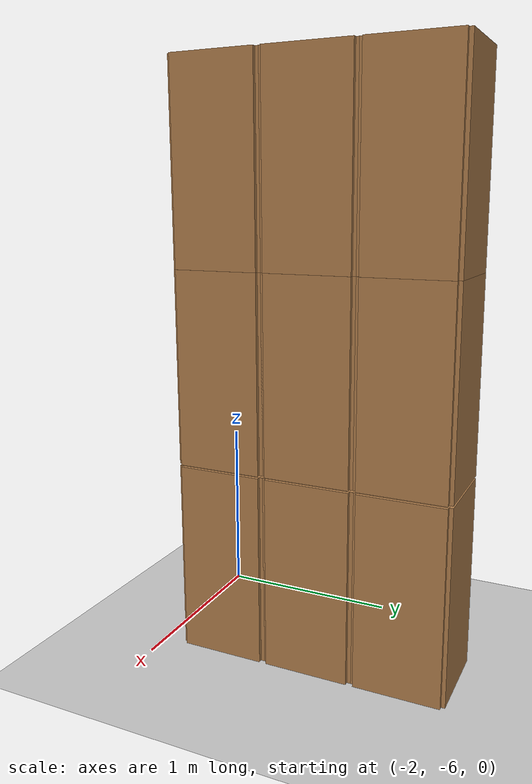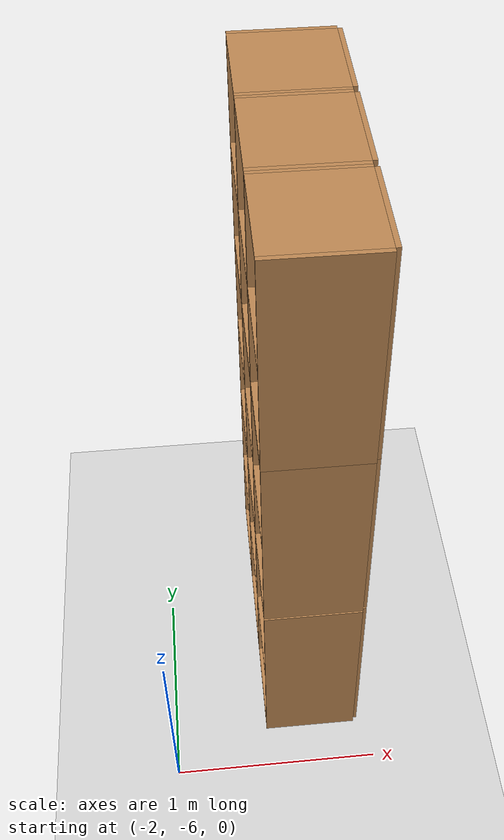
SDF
<sdf version="1.6">
 <world name="default">
  <model name="ground_plane">
   <static>1</static>
   <link name="link">
    <collision name="collision">
     <geometry><plane><normal>0 0 1</normal><size>100 100</size></plane></geometry>
     <surface>
      <contact><collide_bitmask>65535</collide_bitmask></contact>
      <friction><ode><mu>100</mu><mu2>50</mu2></ode></friction>
     </surface>
    </collision>
    <visual name="visual">
     <cast_shadows>0</cast_shadows>
     <geometry><plane><normal>0 0 1</normal><size>100 100</size></plane></geometry>
     <material>
      <script><uri>file://media/materials/scripts/gazebo.material</uri><name>Gazebo/Grey</name></script>
     </material>
    </visual>
   </link>
  </model>
  <model name="Locker18_clone_4_clone_2_clone_2_clone_2_clone_clone_0">
   <model name="Locker18">
    <model name="Locker3">
     <model name="cabinet">
      <static>1</static>
      <link name="cabinet_bottom_plate">
       <inertial>
        <pose>0 0 -1 0 -0 0</pose>
        <inertia><ixx>2.05</ixx><ixy>0</ixy><ixz>0</ixz><iyy>2.05</iyy><iyz>0</iyz><izz>2.05</izz></inertia>
        <mass>25</mass>
       </inertial>
       <collision name="cabinet_bottom_plate_geom">
        <pose>0 0 0.01 0 -0 0</pose>
        <geometry><box><size>0.45 0.45 0.02</size></box></geometry>
       </collision>
       <visual name="cabinet_bottom_plate_geom_visual">
        <pose>0 0 0.01 0 -0 0</pose>
        <geometry><box><size>0.45 0.45 0.02</size></box></geometry>
        <material>
         <script><uri>file://media/materials/scripts/gazebo.material</uri><name>Gazebo/Wood</name></script>
        </material>
       </visual>
       <collision name="cabinet_bottom_plate_geom_cabinet_back_plate">
        <pose>0.235 0 0.51 0 -0 0</pose>
        <geometry><box><size>0.02 0.45 1.02</size></box></geometry>
       </collision>
       <visual name="cabinet_bottom_plate_geom_cabinet_back_plate_visual">
        <pose>0.235 0 0.51 0 -0 0</pose>
        <geometry><box><size>0.02 0.45 1.02</size></box></geometry>
        <material>
         <script><uri>file://media/materials/scripts/gazebo.material</uri><name>Gazebo/Wood</name></script>
        </material>
       </visual>
       <collision name="cabinet_bottom_plate_geom_cabinet_left_plate">
        <pose>0 0.235 0.51 0 -0 0</pose>
        <geometry><box><size>0.45 0.02 1.02</size></box></geometry>
       </collision>
       <visual name="cabinet_bottom_plate_geom_cabinet_left_plate_visual">
        <pose>0 0.235 0.51 0 -0 0</pose>
        <geometry><box><size>0.45 0.02 1.02</size></box></geometry>
        <material>
         <script><uri>file://media/materials/scripts/gazebo.material</uri><name>Gazebo/Wood</name></script>
        </material>
       </visual>
       <collision name="cabinet_bottom_plate_geom_cabinet_middle_plate">
        <pose>0 0 0.51 0 -0 0</pose>
        <geometry><box><size>0.45 0.45 0.02</size></box></geometry>
       </collision>
       <visual name="cabinet_bottom_plate_geom_cabinet_middle_plate_visual">
        <pose>0 0 0.51 0 -0 0</pose>
        <geometry><box><size>0.45 0.45 0.02</size></box></geometry>
        <material>
         <script><uri>file://media/materials/scripts/gazebo.material</uri><name>Gazebo/Wood</name></script>
        </material>
       </visual>
       <collision name="cabinet_bottom_plate_geom_cabinet_right_plate">
        <pose>0 -0.235 0.51 0 -0 0</pose>
        <geometry><box><size>0.45 0.02 1.02</size></box></geometry>
       </collision>
       <visual name="cabinet_bottom_plate_geom_cabinet_right_plate_visual">
        <pose>0 -0.235 0.51 0 -0 0</pose>
        <geometry><box><size>0.45 0.02 1.02</size></box></geometry>
        <material>
         <script><uri>file://media/materials/scripts/gazebo.material</uri><name>Gazebo/Wood</name></script>
        </material>
       </visual>
       <collision name="cabinet_bottom_plate_geom_cabinet_top_plate">
        <pose>0 0 1.01 0 -0 0</pose>
        <geometry><box><size>0.45 0.45 0.02</size></box></geometry>
       </collision>
       <visual name="cabinet_bottom_plate_geom_cabinet_top_plate_visual">
        <pose>0 0 1.01 0 -0 0</pose>
        <geometry><box><size>0.45 0.45 0.02</size></box></geometry>
        <material>
         <script><uri>file://media/materials/scripts/gazebo.material</uri><name>Gazebo/Wood</name></script>
        </material>
       </visual>
      </link>
      <pose>-0.676968 1.45758 0 0 -0 0</pose>
     </model>
     <model name="cabinet_clone">
      <static>1</static>
      <link name="cabinet_bottom_plate">
       <inertial>
        <pose>0 0 -1 0 -0 0</pose>
        <inertia><ixx>2.05</ixx><ixy>0</ixy><ixz>0</ixz><iyy>2.05</iyy><iyz>0</iyz><izz>2.05</izz></inertia>
        <mass>25</mass>
       </inertial>
       <collision name="cabinet_bottom_plate_geom">
        <pose>0 0 0.01 0 -0 0</pose>
        <geometry><box><size>0.45 0.45 0.02</size></box></geometry>
       </collision>
       <visual name="cabinet_bottom_plate_geom_visual">
        <pose>0 0 0.01 0 -0 0</pose>
        <geometry><box><size>0.45 0.45 0.02</size></box></geometry>
        <material>
         <script><uri>file://media/materials/scripts/gazebo.material</uri><name>Gazebo/Wood</name></script>
        </material>
       </visual>
       <collision name="cabinet_bottom_plate_geom_cabinet_back_plate">
        <pose>0.235 0 0.51 0 -0 0</pose>
        <geometry><box><size>0.02 0.45 1.02</size></box></geometry>
       </collision>
       <visual name="cabinet_bottom_plate_geom_cabinet_back_plate_visual">
        <pose>0.235 0 0.51 0 -0 0</pose>
        <geometry><box><size>0.02 0.45 1.02</size></box></geometry>
        <material>
         <script><uri>file://media/materials/scripts/gazebo.material</uri><name>Gazebo/Wood</name></script>
        </material>
       </visual>
       <collision name="cabinet_bottom_plate_geom_cabinet_left_plate">
        <pose>0 0.235 0.51 0 -0 0</pose>
        <geometry><box><size>0.45 0.02 1.02</size></box></geometry>
       </collision>
       <visual name="cabinet_bottom_plate_geom_cabinet_left_plate_visual">
        <pose>0 0.235 0.51 0 -0 0</pose>
        <geometry><box><size>0.45 0.02 1.02</size></box></geometry>
        <material>
         <script><uri>file://media/materials/scripts/gazebo.material</uri><name>Gazebo/Wood</name></script>
        </material>
       </visual>
       <collision name="cabinet_bottom_plate_geom_cabinet_middle_plate">
        <pose>0 0 0.51 0 -0 0</pose>
        <geometry><box><size>0.45 0.45 0.02</size></box></geometry>
       </collision>
       <visual name="cabinet_bottom_plate_geom_cabinet_middle_plate_visual">
        <pose>0 0 0.51 0 -0 0</pose>
        <geometry><box><size>0.45 0.45 0.02</size></box></geometry>
        <material>
         <script><uri>file://media/materials/scripts/gazebo.material</uri><name>Gazebo/Wood</name></script>
        </material>
       </visual>
       <collision name="cabinet_bottom_plate_geom_cabinet_right_plate">
        <pose>0 -0.235 0.51 0 -0 0</pose>
        <geometry><box><size>0.45 0.02 1.02</size></box></geometry>
       </collision>
       <visual name="cabinet_bottom_plate_geom_cabinet_right_plate_visual">
        <pose>0 -0.235 0.51 0 -0 0</pose>
        <geometry><box><size>0.45 0.02 1.02</size></box></geometry>
        <material>
         <script><uri>file://media/materials/scripts/gazebo.material</uri><name>Gazebo/Wood</name></script>
        </material>
       </visual>
       <collision name="cabinet_bottom_plate_geom_cabinet_top_plate">
        <pose>0 0 1.01 0 -0 0</pose>
        <geometry><box><size>0.45 0.45 0.02</size></box></geometry>
       </collision>
       <visual name="cabinet_bottom_plate_geom_cabinet_top_plate_visual">
        <pose>0 0 1.01 0 -0 0</pose>
        <geometry><box><size>0.45 0.45 0.02</size></box></geometry>
        <material>
         <script><uri>file://media/materials/scripts/gazebo.material</uri><name>Gazebo/Wood</name></script>
        </material>
       </visual>
      </link>
      <pose>-0.676968 0.970971 0 0 -0 0</pose>
     </model>
     <model name="cabinet_clone_0">
      <static>1</static>
      <link name="cabinet_bottom_plate">
       <inertial>
        <pose>0 0 -1 0 -0 0</pose>
        <inertia><ixx>2.05</ixx><ixy>0</ixy><ixz>0</ixz><iyy>2.05</iyy><iyz>0</iyz><izz>2.05</izz></inertia>
        <mass>25</mass>
       </inertial>
       <collision name="cabinet_bottom_plate_geom">
        <pose>0 0 0.01 0 -0 0</pose>
        <geometry><box><size>0.45 0.45 0.02</size></box></geometry>
       </collision>
       <visual name="cabinet_bottom_plate_geom_visual">
        <pose>0 0 0.01 0 -0 0</pose>
        <geometry><box><size>0.45 0.45 0.02</size></box></geometry>
        <material>
         <script><uri>file://media/materials/scripts/gazebo.material</uri><name>Gazebo/Wood</name></script>
        </material>
       </visual>
       <collision name="cabinet_bottom_plate_geom_cabinet_back_plate">
        <pose>0.235 0 0.51 0 -0 0</pose>
        <geometry><box><size>0.02 0.45 1.02</size></box></geometry>
       </collision>
       <visual name="cabinet_bottom_plate_geom_cabinet_back_plate_visual">
        <pose>0.235 0 0.51 0 -0 0</pose>
        <geometry><box><size>0.02 0.45 1.02</size></box></geometry>
        <material>
         <script><uri>file://media/materials/scripts/gazebo.material</uri><name>Gazebo/Wood</name></script>
        </material>
       </visual>
       <collision name="cabinet_bottom_plate_geom_cabinet_left_plate">
        <pose>0 0.235 0.51 0 -0 0</pose>
        <geometry><box><size>0.45 0.02 1.02</size></box></geometry>
       </collision>
       <visual name="cabinet_bottom_plate_geom_cabinet_left_plate_visual">
        <pose>0 0.235 0.51 0 -0 0</pose>
        <geometry><box><size>0.45 0.02 1.02</size></box></geometry>
        <material>
         <script><uri>file://media/materials/scripts/gazebo.material</uri><name>Gazebo/Wood</name></script>
        </material>
       </visual>
       <collision name="cabinet_bottom_plate_geom_cabinet_middle_plate">
        <pose>0 0 0.51 0 -0 0</pose>
        <geometry><box><size>0.45 0.45 0.02</size></box></geometry>
       </collision>
       <visual name="cabinet_bottom_plate_geom_cabinet_middle_plate_visual">
        <pose>0 0 0.51 0 -0 0</pose>
        <geometry><box><size>0.45 0.45 0.02</size></box></geometry>
        <material>
         <script><uri>file://media/materials/scripts/gazebo.material</uri><name>Gazebo/Wood</name></script>
        </material>
       </visual>
       <collision name="cabinet_bottom_plate_geom_cabinet_right_plate">
        <pose>0 -0.235 0.51 0 -0 0</pose>
        <geometry><box><size>0.45 0.02 1.02</size></box></geometry>
       </collision>
       <visual name="cabinet_bottom_plate_geom_cabinet_right_plate_visual">
        <pose>0 -0.235 0.51 0 -0 0</pose>
        <geometry><box><size>0.45 0.02 1.02</size></box></geometry>
        <material>
         <script><uri>file://media/materials/scripts/gazebo.material</uri><name>Gazebo/Wood</name></script>
        </material>
       </visual>
       <collision name="cabinet_bottom_plate_geom_cabinet_top_plate">
        <pose>0 0 1.01 0 -0 0</pose>
        <geometry><box><size>0.45 0.45 0.02</size></box></geometry>
       </collision>
       <visual name="cabinet_bottom_plate_geom_cabinet_top_plate_visual">
        <pose>0 0 1.01 0 -0 0</pose>
        <geometry><box><size>0.45 0.45 0.02</size></box></geometry>
        <material>
         <script><uri>file://media/materials/scripts/gazebo.material</uri><name>Gazebo/Wood</name></script>
        </material>
       </visual>
      </link>
      <pose>-0.676968 0.48391 0 0 -0 0</pose>
     </model>
     <static>0</static>
     <pose>0 3e-06 -1.02763 0 -0 0</pose>
    </model>
    <model name="Locker3_clone">
     <model name="cabinet">
      <static>1</static>
      <link name="cabinet_bottom_plate">
       <inertial>
        <pose>0 0 -1 0 -0 0</pose>
        <inertia><ixx>2.05</ixx><ixy>0</ixy><ixz>0</ixz><iyy>2.05</iyy><iyz>0</iyz><izz>2.05</izz></inertia>
        <mass>25</mass>
       </inertial>
       <collision name="cabinet_bottom_plate_geom">
        <pose>0 0 0.01 0 -0 0</pose>
        <geometry><box><size>0.45 0.45 0.02</size></box></geometry>
       </collision>
       <visual name="cabinet_bottom_plate_geom_visual">
        <pose>0 0 0.01 0 -0 0</pose>
        <geometry><box><size>0.45 0.45 0.02</size></box></geometry>
        <material>
         <script><uri>file://media/materials/scripts/gazebo.material</uri><name>Gazebo/Wood</name></script>
        </material>
       </visual>
       <collision name="cabinet_bottom_plate_geom_cabinet_back_plate">
        <pose>0.235 0 0.51 0 -0 0</pose>
        <geometry><box><size>0.02 0.45 1.02</size></box></geometry>
       </collision>
       <visual name="cabinet_bottom_plate_geom_cabinet_back_plate_visual">
        <pose>0.235 0 0.51 0 -0 0</pose>
        <geometry><box><size>0.02 0.45 1.02</size></box></geometry>
        <material>
         <script><uri>file://media/materials/scripts/gazebo.material</uri><name>Gazebo/Wood</name></script>
        </material>
       </visual>
       <collision name="cabinet_bottom_plate_geom_cabinet_left_plate">
        <pose>0 0.235 0.51 0 -0 0</pose>
        <geometry><box><size>0.45 0.02 1.02</size></box></geometry>
       </collision>
       <visual name="cabinet_bottom_plate_geom_cabinet_left_plate_visual">
        <pose>0 0.235 0.51 0 -0 0</pose>
        <geometry><box><size>0.45 0.02 1.02</size></box></geometry>
        <material>
         <script><uri>file://media/materials/scripts/gazebo.material</uri><name>Gazebo/Wood</name></script>
        </material>
       </visual>
       <collision name="cabinet_bottom_plate_geom_cabinet_middle_plate">
        <pose>0 0 0.51 0 -0 0</pose>
        <geometry><box><size>0.45 0.45 0.02</size></box></geometry>
       </collision>
       <visual name="cabinet_bottom_plate_geom_cabinet_middle_plate_visual">
        <pose>0 0 0.51 0 -0 0</pose>
        <geometry><box><size>0.45 0.45 0.02</size></box></geometry>
        <material>
         <script><uri>file://media/materials/scripts/gazebo.material</uri><name>Gazebo/Wood</name></script>
        </material>
       </visual>
       <collision name="cabinet_bottom_plate_geom_cabinet_right_plate">
        <pose>0 -0.235 0.51 0 -0 0</pose>
        <geometry><box><size>0.45 0.02 1.02</size></box></geometry>
       </collision>
       <visual name="cabinet_bottom_plate_geom_cabinet_right_plate_visual">
        <pose>0 -0.235 0.51 0 -0 0</pose>
        <geometry><box><size>0.45 0.02 1.02</size></box></geometry>
        <material>
         <script><uri>file://media/materials/scripts/gazebo.material</uri><name>Gazebo/Wood</name></script>
        </material>
       </visual>
       <collision name="cabinet_bottom_plate_geom_cabinet_top_plate">
        <pose>0 0 1.01 0 -0 0</pose>
        <geometry><box><size>0.45 0.45 0.02</size></box></geometry>
       </collision>
       <visual name="cabinet_bottom_plate_geom_cabinet_top_plate_visual">
        <pose>0 0 1.01 0 -0 0</pose>
        <geometry><box><size>0.45 0.45 0.02</size></box></geometry>
        <material>
         <script><uri>file://media/materials/scripts/gazebo.material</uri><name>Gazebo/Wood</name></script>
        </material>
       </visual>
      </link>
      <pose>-0.676968 1.45758 0 0 -0 0</pose>
     </model>
     <model name="cabinet_clone">
      <static>1</static>
      <link name="cabinet_bottom_plate">
       <inertial>
        <pose>0 0 -1 0 -0 0</pose>
        <inertia><ixx>2.05</ixx><ixy>0</ixy><ixz>0</ixz><iyy>2.05</iyy><iyz>0</iyz><izz>2.05</izz></inertia>
        <mass>25</mass>
       </inertial>
       <collision name="cabinet_bottom_plate_geom">
        <pose>0 0 0.01 0 -0 0</pose>
        <geometry><box><size>0.45 0.45 0.02</size></box></geometry>
       </collision>
       <visual name="cabinet_bottom_plate_geom_visual">
        <pose>0 0 0.01 0 -0 0</pose>
        <geometry><box><size>0.45 0.45 0.02</size></box></geometry>
        <material>
         <script><uri>file://media/materials/scripts/gazebo.material</uri><name>Gazebo/Wood</name></script>
        </material>
       </visual>
       <collision name="cabinet_bottom_plate_geom_cabinet_back_plate">
        <pose>0.235 0 0.51 0 -0 0</pose>
        <geometry><box><size>0.02 0.45 1.02</size></box></geometry>
       </collision>
       <visual name="cabinet_bottom_plate_geom_cabinet_back_plate_visual">
        <pose>0.235 0 0.51 0 -0 0</pose>
        <geometry><box><size>0.02 0.45 1.02</size></box></geometry>
        <material>
         <script><uri>file://media/materials/scripts/gazebo.material</uri><name>Gazebo/Wood</name></script>
        </material>
       </visual>
       <collision name="cabinet_bottom_plate_geom_cabinet_left_plate">
        <pose>0 0.235 0.51 0 -0 0</pose>
        <geometry><box><size>0.45 0.02 1.02</size></box></geometry>
       </collision>
       <visual name="cabinet_bottom_plate_geom_cabinet_left_plate_visual">
        <pose>0 0.235 0.51 0 -0 0</pose>
        <geometry><box><size>0.45 0.02 1.02</size></box></geometry>
        <material>
         <script><uri>file://media/materials/scripts/gazebo.material</uri><name>Gazebo/Wood</name></script>
        </material>
       </visual>
       <collision name="cabinet_bottom_plate_geom_cabinet_middle_plate">
        <pose>0 0 0.51 0 -0 0</pose>
        <geometry><box><size>0.45 0.45 0.02</size></box></geometry>
       </collision>
       <visual name="cabinet_bottom_plate_geom_cabinet_middle_plate_visual">
        <pose>0 0 0.51 0 -0 0</pose>
        <geometry><box><size>0.45 0.45 0.02</size></box></geometry>
        <material>
         <script><uri>file://media/materials/scripts/gazebo.material</uri><name>Gazebo/Wood</name></script>
        </material>
       </visual>
       <collision name="cabinet_bottom_plate_geom_cabinet_right_plate">
        <pose>0 -0.235 0.51 0 -0 0</pose>
        <geometry><box><size>0.45 0.02 1.02</size></box></geometry>
       </collision>
       <visual name="cabinet_bottom_plate_geom_cabinet_right_plate_visual">
        <pose>0 -0.235 0.51 0 -0 0</pose>
        <geometry><box><size>0.45 0.02 1.02</size></box></geometry>
        <material>
         <script><uri>file://media/materials/scripts/gazebo.material</uri><name>Gazebo/Wood</name></script>
        </material>
       </visual>
       <collision name="cabinet_bottom_plate_geom_cabinet_top_plate">
        <pose>0 0 1.01 0 -0 0</pose>
        <geometry><box><size>0.45 0.45 0.02</size></box></geometry>
       </collision>
       <visual name="cabinet_bottom_plate_geom_cabinet_top_plate_visual">
        <pose>0 0 1.01 0 -0 0</pose>
        <geometry><box><size>0.45 0.45 0.02</size></box></geometry>
        <material>
         <script><uri>file://media/materials/scripts/gazebo.material</uri><name>Gazebo/Wood</name></script>
        </material>
       </visual>
      </link>
      <pose>-0.676968 0.970971 0 0 -0 0</pose>
     </model>
     <model name="cabinet_clone_0">
      <static>1</static>
      <link name="cabinet_bottom_plate">
       <inertial>
        <pose>0 0 -1 0 -0 0</pose>
        <inertia><ixx>2.05</ixx><ixy>0</ixy><ixz>0</ixz><iyy>2.05</iyy><iyz>0</iyz><izz>2.05</izz></inertia>
        <mass>25</mass>
       </inertial>
       <collision name="cabinet_bottom_plate_geom">
        <pose>0 0 0.01 0 -0 0</pose>
        <geometry><box><size>0.45 0.45 0.02</size></box></geometry>
       </collision>
       <visual name="cabinet_bottom_plate_geom_visual">
        <pose>0 0 0.01 0 -0 0</pose>
        <geometry><box><size>0.45 0.45 0.02</size></box></geometry>
        <material>
         <script><uri>file://media/materials/scripts/gazebo.material</uri><name>Gazebo/Wood</name></script>
        </material>
       </visual>
       <collision name="cabinet_bottom_plate_geom_cabinet_back_plate">
        <pose>0.235 0 0.51 0 -0 0</pose>
        <geometry><box><size>0.02 0.45 1.02</size></box></geometry>
       </collision>
       <visual name="cabinet_bottom_plate_geom_cabinet_back_plate_visual">
        <pose>0.235 0 0.51 0 -0 0</pose>
        <geometry><box><size>0.02 0.45 1.02</size></box></geometry>
        <material>
         <script><uri>file://media/materials/scripts/gazebo.material</uri><name>Gazebo/Wood</name></script>
        </material>
       </visual>
       <collision name="cabinet_bottom_plate_geom_cabinet_left_plate">
        <pose>0 0.235 0.51 0 -0 0</pose>
        <geometry><box><size>0.45 0.02 1.02</size></box></geometry>
       </collision>
       <visual name="cabinet_bottom_plate_geom_cabinet_left_plate_visual">
        <pose>0 0.235 0.51 0 -0 0</pose>
        <geometry><box><size>0.45 0.02 1.02</size></box></geometry>
        <material>
         <script><uri>file://media/materials/scripts/gazebo.material</uri><name>Gazebo/Wood</name></script>
        </material>
       </visual>
       <collision name="cabinet_bottom_plate_geom_cabinet_middle_plate">
        <pose>0 0 0.51 0 -0 0</pose>
        <geometry><box><size>0.45 0.45 0.02</size></box></geometry>
       </collision>
       <visual name="cabinet_bottom_plate_geom_cabinet_middle_plate_visual">
        <pose>0 0 0.51 0 -0 0</pose>
        <geometry><box><size>0.45 0.45 0.02</size></box></geometry>
        <material>
         <script><uri>file://media/materials/scripts/gazebo.material</uri><name>Gazebo/Wood</name></script>
        </material>
       </visual>
       <collision name="cabinet_bottom_plate_geom_cabinet_right_plate">
        <pose>0 -0.235 0.51 0 -0 0</pose>
        <geometry><box><size>0.45 0.02 1.02</size></box></geometry>
       </collision>
       <visual name="cabinet_bottom_plate_geom_cabinet_right_plate_visual">
        <pose>0 -0.235 0.51 0 -0 0</pose>
        <geometry><box><size>0.45 0.02 1.02</size></box></geometry>
        <material>
         <script><uri>file://media/materials/scripts/gazebo.material</uri><name>Gazebo/Wood</name></script>
        </material>
       </visual>
       <collision name="cabinet_bottom_plate_geom_cabinet_top_plate">
        <pose>0 0 1.01 0 -0 0</pose>
        <geometry><box><size>0.45 0.45 0.02</size></box></geometry>
       </collision>
       <visual name="cabinet_bottom_plate_geom_cabinet_top_plate_visual">
        <pose>0 0 1.01 0 -0 0</pose>
        <geometry><box><size>0.45 0.45 0.02</size></box></geometry>
        <material>
         <script><uri>file://media/materials/scripts/gazebo.material</uri><name>Gazebo/Wood</name></script>
        </material>
       </visual>
      </link>
      <pose>-0.676968 0.48391 0 0 -0 0</pose>
     </model>
     <static>0</static>
     <pose>0 3e-06 0.003717 0 -0 0</pose>
    </model>
    <model name="Locker3_clone_clone">
     <model name="cabinet">
      <static>1</static>
      <link name="cabinet_bottom_plate">
       <inertial>
        <pose>0 0 -1 0 -0 0</pose>
        <inertia><ixx>2.05</ixx><ixy>0</ixy><ixz>0</ixz><iyy>2.05</iyy><iyz>0</iyz><izz>2.05</izz></inertia>
        <mass>25</mass>
       </inertial>
       <collision name="cabinet_bottom_plate_geom">
        <pose>0 0 0.01 0 -0 0</pose>
        <geometry><box><size>0.45 0.45 0.02</size></box></geometry>
       </collision>
       <visual name="cabinet_bottom_plate_geom_visual">
        <pose>0 0 0.01 0 -0 0</pose>
        <geometry><box><size>0.45 0.45 0.02</size></box></geometry>
        <material>
         <script><uri>file://media/materials/scripts/gazebo.material</uri><name>Gazebo/Wood</name></script>
        </material>
       </visual>
       <collision name="cabinet_bottom_plate_geom_cabinet_back_plate">
        <pose>0.235 0 0.51 0 -0 0</pose>
        <geometry><box><size>0.02 0.45 1.02</size></box></geometry>
       </collision>
       <visual name="cabinet_bottom_plate_geom_cabinet_back_plate_visual">
        <pose>0.235 0 0.51 0 -0 0</pose>
        <geometry><box><size>0.02 0.45 1.02</size></box></geometry>
        <material>
         <script><uri>file://media/materials/scripts/gazebo.material</uri><name>Gazebo/Wood</name></script>
        </material>
       </visual>
       <collision name="cabinet_bottom_plate_geom_cabinet_left_plate">
        <pose>0 0.235 0.51 0 -0 0</pose>
        <geometry><box><size>0.45 0.02 1.02</size></box></geometry>
       </collision>
       <visual name="cabinet_bottom_plate_geom_cabinet_left_plate_visual">
        <pose>0 0.235 0.51 0 -0 0</pose>
        <geometry><box><size>0.45 0.02 1.02</size></box></geometry>
        <material>
         <script><uri>file://media/materials/scripts/gazebo.material</uri><name>Gazebo/Wood</name></script>
        </material>
       </visual>
       <collision name="cabinet_bottom_plate_geom_cabinet_middle_plate">
        <pose>0 0 0.51 0 -0 0</pose>
        <geometry><box><size>0.45 0.45 0.02</size></box></geometry>
       </collision>
       <visual name="cabinet_bottom_plate_geom_cabinet_middle_plate_visual">
        <pose>0 0 0.51 0 -0 0</pose>
        <geometry><box><size>0.45 0.45 0.02</size></box></geometry>
        <material>
         <script><uri>file://media/materials/scripts/gazebo.material</uri><name>Gazebo/Wood</name></script>
        </material>
       </visual>
       <collision name="cabinet_bottom_plate_geom_cabinet_right_plate">
        <pose>0 -0.235 0.51 0 -0 0</pose>
        <geometry><box><size>0.45 0.02 1.02</size></box></geometry>
       </collision>
       <visual name="cabinet_bottom_plate_geom_cabinet_right_plate_visual">
        <pose>0 -0.235 0.51 0 -0 0</pose>
        <geometry><box><size>0.45 0.02 1.02</size></box></geometry>
        <material>
         <script><uri>file://media/materials/scripts/gazebo.material</uri><name>Gazebo/Wood</name></script>
        </material>
       </visual>
       <collision name="cabinet_bottom_plate_geom_cabinet_top_plate">
        <pose>0 0 1.01 0 -0 0</pose>
        <geometry><box><size>0.45 0.45 0.02</size></box></geometry>
       </collision>
       <visual name="cabinet_bottom_plate_geom_cabinet_top_plate_visual">
        <pose>0 0 1.01 0 -0 0</pose>
        <geometry><box><size>0.45 0.45 0.02</size></box></geometry>
        <material>
         <script><uri>file://media/materials/scripts/gazebo.material</uri><name>Gazebo/Wood</name></script>
        </material>
       </visual>
      </link>
      <pose>-0.676968 1.45758 0 0 -0 0</pose>
     </model>
     <model name="cabinet_clone">
      <static>1</static>
      <link name="cabinet_bottom_plate">
       <inertial>
        <pose>0 0 -1 0 -0 0</pose>
        <inertia><ixx>2.05</ixx><ixy>0</ixy><ixz>0</ixz><iyy>2.05</iyy><iyz>0</iyz><izz>2.05</izz></inertia>
        <mass>25</mass>
       </inertial>
       <collision name="cabinet_bottom_plate_geom">
        <pose>0 0 0.01 0 -0 0</pose>
        <geometry><box><size>0.45 0.45 0.02</size></box></geometry>
       </collision>
       <visual name="cabinet_bottom_plate_geom_visual">
        <pose>0 0 0.01 0 -0 0</pose>
        <geometry><box><size>0.45 0.45 0.02</size></box></geometry>
        <material>
         <script><uri>file://media/materials/scripts/gazebo.material</uri><name>Gazebo/Wood</name></script>
        </material>
       </visual>
       <collision name="cabinet_bottom_plate_geom_cabinet_back_plate">
        <pose>0.235 0 0.51 0 -0 0</pose>
        <geometry><box><size>0.02 0.45 1.02</size></box></geometry>
       </collision>
       <visual name="cabinet_bottom_plate_geom_cabinet_back_plate_visual">
        <pose>0.235 0 0.51 0 -0 0</pose>
        <geometry><box><size>0.02 0.45 1.02</size></box></geometry>
        <material>
         <script><uri>file://media/materials/scripts/gazebo.material</uri><name>Gazebo/Wood</name></script>
        </material>
       </visual>
       <collision name="cabinet_bottom_plate_geom_cabinet_left_plate">
        <pose>0 0.235 0.51 0 -0 0</pose>
        <geometry><box><size>0.45 0.02 1.02</size></box></geometry>
       </collision>
       <visual name="cabinet_bottom_plate_geom_cabinet_left_plate_visual">
        <pose>0 0.235 0.51 0 -0 0</pose>
        <geometry><box><size>0.45 0.02 1.02</size></box></geometry>
        <material>
         <script><uri>file://media/materials/scripts/gazebo.material</uri><name>Gazebo/Wood</name></script>
        </material>
       </visual>
       <collision name="cabinet_bottom_plate_geom_cabinet_middle_plate">
        <pose>0 0 0.51 0 -0 0</pose>
        <geometry><box><size>0.45 0.45 0.02</size></box></geometry>
       </collision>
       <visual name="cabinet_bottom_plate_geom_cabinet_middle_plate_visual">
        <pose>0 0 0.51 0 -0 0</pose>
        <geometry><box><size>0.45 0.45 0.02</size></box></geometry>
        <material>
         <script><uri>file://media/materials/scripts/gazebo.material</uri><name>Gazebo/Wood</name></script>
        </material>
       </visual>
       <collision name="cabinet_bottom_plate_geom_cabinet_right_plate">
        <pose>0 -0.235 0.51 0 -0 0</pose>
        <geometry><box><size>0.45 0.02 1.02</size></box></geometry>
       </collision>
       <visual name="cabinet_bottom_plate_geom_cabinet_right_plate_visual">
        <pose>0 -0.235 0.51 0 -0 0</pose>
        <geometry><box><size>0.45 0.02 1.02</size></box></geometry>
        <material>
         <script><uri>file://media/materials/scripts/gazebo.material</uri><name>Gazebo/Wood</name></script>
        </material>
       </visual>
       <collision name="cabinet_bottom_plate_geom_cabinet_top_plate">
        <pose>0 0 1.01 0 -0 0</pose>
        <geometry><box><size>0.45 0.45 0.02</size></box></geometry>
       </collision>
       <visual name="cabinet_bottom_plate_geom_cabinet_top_plate_visual">
        <pose>0 0 1.01 0 -0 0</pose>
        <geometry><box><size>0.45 0.45 0.02</size></box></geometry>
        <material>
         <script><uri>file://media/materials/scripts/gazebo.material</uri><name>Gazebo/Wood</name></script>
        </material>
       </visual>
      </link>
      <pose>-0.676968 0.970971 0 0 -0 0</pose>
     </model>
     <model name="cabinet_clone_0">
      <static>1</static>
      <link name="cabinet_bottom_plate">
       <inertial>
        <pose>0 0 -1 0 -0 0</pose>
        <inertia><ixx>2.05</ixx><ixy>0</ixy><ixz>0</ixz><iyy>2.05</iyy><iyz>0</iyz><izz>2.05</izz></inertia>
        <mass>25</mass>
       </inertial>
       <collision name="cabinet_bottom_plate_geom">
        <pose>0 0 0.01 0 -0 0</pose>
        <geometry><box><size>0.45 0.45 0.02</size></box></geometry>
       </collision>
       <visual name="cabinet_bottom_plate_geom_visual">
        <pose>0 0 0.01 0 -0 0</pose>
        <geometry><box><size>0.45 0.45 0.02</size></box></geometry>
        <material>
         <script><uri>file://media/materials/scripts/gazebo.material</uri><name>Gazebo/Wood</name></script>
        </material>
       </visual>
       <collision name="cabinet_bottom_plate_geom_cabinet_back_plate">
        <pose>0.235 0 0.51 0 -0 0</pose>
        <geometry><box><size>0.02 0.45 1.02</size></box></geometry>
       </collision>
       <visual name="cabinet_bottom_plate_geom_cabinet_back_plate_visual">
        <pose>0.235 0 0.51 0 -0 0</pose>
        <geometry><box><size>0.02 0.45 1.02</size></box></geometry>
        <material>
         <script><uri>file://media/materials/scripts/gazebo.material</uri><name>Gazebo/Wood</name></script>
        </material>
       </visual>
       <collision name="cabinet_bottom_plate_geom_cabinet_left_plate">
        <pose>0 0.235 0.51 0 -0 0</pose>
        <geometry><box><size>0.45 0.02 1.02</size></box></geometry>
       </collision>
       <visual name="cabinet_bottom_plate_geom_cabinet_left_plate_visual">
        <pose>0 0.235 0.51 0 -0 0</pose>
        <geometry><box><size>0.45 0.02 1.02</size></box></geometry>
        <material>
         <script><uri>file://media/materials/scripts/gazebo.material</uri><name>Gazebo/Wood</name></script>
        </material>
       </visual>
       <collision name="cabinet_bottom_plate_geom_cabinet_middle_plate">
        <pose>0 0 0.51 0 -0 0</pose>
        <geometry><box><size>0.45 0.45 0.02</size></box></geometry>
       </collision>
       <visual name="cabinet_bottom_plate_geom_cabinet_middle_plate_visual">
        <pose>0 0 0.51 0 -0 0</pose>
        <geometry><box><size>0.45 0.45 0.02</size></box></geometry>
        <material>
         <script><uri>file://media/materials/scripts/gazebo.material</uri><name>Gazebo/Wood</name></script>
        </material>
       </visual>
       <collision name="cabinet_bottom_plate_geom_cabinet_right_plate">
        <pose>0 -0.235 0.51 0 -0 0</pose>
        <geometry><box><size>0.45 0.02 1.02</size></box></geometry>
       </collision>
       <visual name="cabinet_bottom_plate_geom_cabinet_right_plate_visual">
        <pose>0 -0.235 0.51 0 -0 0</pose>
        <geometry><box><size>0.45 0.02 1.02</size></box></geometry>
        <material>
         <script><uri>file://media/materials/scripts/gazebo.material</uri><name>Gazebo/Wood</name></script>
        </material>
       </visual>
       <collision name="cabinet_bottom_plate_geom_cabinet_top_plate">
        <pose>0 0 1.01 0 -0 0</pose>
        <geometry><box><size>0.45 0.45 0.02</size></box></geometry>
       </collision>
       <visual name="cabinet_bottom_plate_geom_cabinet_top_plate_visual">
        <pose>0 0 1.01 0 -0 0</pose>
        <geometry><box><size>0.45 0.45 0.02</size></box></geometry>
        <material>
         <script><uri>file://media/materials/scripts/gazebo.material</uri><name>Gazebo/Wood</name></script>
        </material>
       </visual>
      </link>
      <pose>-0.676968 0.48391 0 0 -0 0</pose>
     </model>
     <static>0</static>
     <pose>0 3e-06 1.02391 0 -0 0</pose>
    </model>
    <static>0</static>
    <pose>-0 4e-06 4e-06 0 -0 0</pose>
   </model>
   <static>0</static>
   <pose>-0.634698 -6.0688 1.08672 0 -0 0</pose>
  </model>
 </world>
</sdf>
